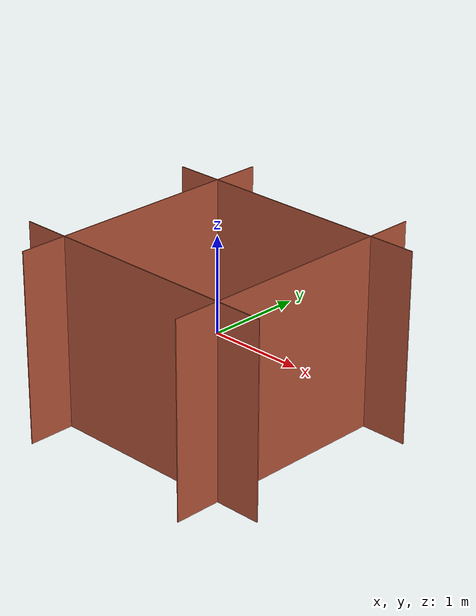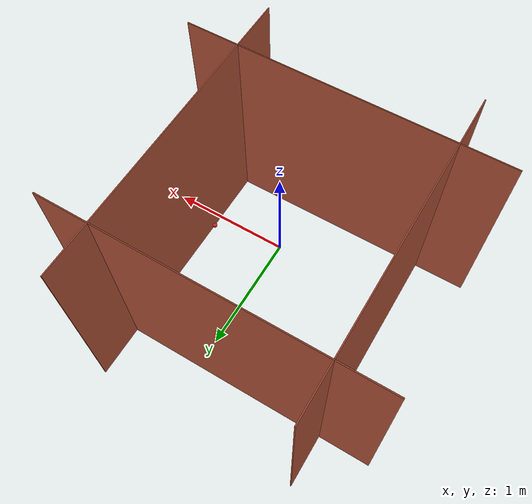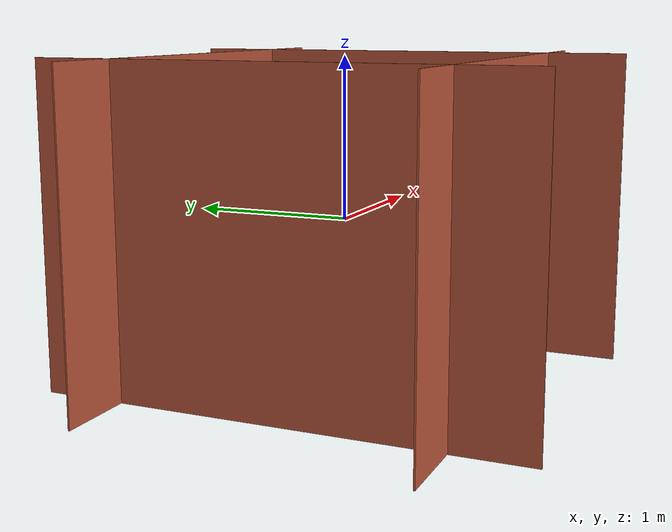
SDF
<sdf version='1.5'>
    <!-- Draw Circle -->
    <model name='ros_symbol'>
      <static>1</static>
      <link name='symbol'>
      	<visual name='goal_1'>
          <pose>0.6 0.1 0 0 0 0</pose>
          <geometry>
            <cylinder>
              <radius>0.02</radius>
              <length>0.01</length>
            </cylinder>
          </geometry>
          <material>
            <script>
              <uri>file://media/materials/scripts/gazebo.material</uri>
              <name>Gazebo/Red</name>
            </script>
          </material>
        </visual>

	<!-- Draw Walls -->
      	<collision name="wall_1">
      	<pose>1 0 0 0 0 0</pose>
        <geometry>
          <box>
            <size>0.01 3.0 2.0</size>
          </box>
        </geometry>
        <max_contacts>10</max_contacts>
          <surface>
            <bounce/>
            <friction>
              <ode/>
            </friction>
            <contact>
              <ode/>
            </contact>
          </surface>
      </collision>

      <visual name="wall_1">
      <pose>1 0 0 0 0 0</pose>
        <geometry>
          <box>
            <size>0.01 3.0 2.0</size>
          </box>
        </geometry>
        <material>
          <script>
            <uri>file://media/materials/scripts/gazebo.material</uri>
            <name>Gazebo/Bricks</name>
          </script>
          <ambient>1 1 1 1</ambient>
          <diffuse>1 1 1 1</diffuse>
          <specular>0.2 0.2 0.2 1</specular>
          <emissive>0 0 0 1</emissive>
        </material>
      </visual>

      <collision name="wall_2">
      	<pose>-1 0 0 0 0 0</pose>
        <geometry>
          <box>
            <size>0.01 3.0 2.0</size>
          </box>
        </geometry>
        <max_contacts>10</max_contacts>
          <surface>
            <bounce/>
            <friction>
              <ode/>
            </friction>
            <contact>
              <ode/>
            </contact>
          </surface>
      </collision>

      <visual name="wall_2">
      	<pose>-1 0 0 0 0 0</pose>
        <geometry>
          <box>
            <size>0.01 3.0 2.0</size>
          </box>
        </geometry>
        <material>
          <script>
            <uri>file://media/materials/scripts/gazebo.material</uri>
            <name>Gazebo/Bricks</name>
          </script>
          <ambient>1 1 1 1</ambient>
          <diffuse>1 1 1 1</diffuse>
          <specular>0.2 0.2 0.2 1</specular>
          <emissive>0 0 0 1</emissive>
        </material>
      </visual>

      <collision name="wall_3">
      	<pose>0 1 0 0 0 0</pose>
        <geometry>
          <box>
            <size>3.0 0.01 2.0</size>
          </box>
        </geometry>
        <max_contacts>10</max_contacts>
          <surface>
            <bounce/>
            <friction>
              <ode/>
            </friction>
            <contact>
              <ode/>
            </contact>
          </surface>
      </collision>

      <visual name="wall_3">
      	<pose>0 1 0 0 0 0</pose>
        <geometry>
          <box>
            <size>3.0 0.01 2.0</size>
          </box>
        </geometry>
        <material>
          <script>
            <uri>file://media/materials/scripts/gazebo.material</uri>
            <name>Gazebo/Bricks</name>
          </script>
          <ambient>1 1 1 1</ambient>
          <diffuse>1 1 1 1</diffuse>
          <specular>0.2 0.2 0.2 1</specular>
          <emissive>0 0 0 1</emissive>
        </material>
      </visual>

      <collision name="wall_4">
      	<pose>0 -1 0 0 0 0</pose>
        <geometry>
          <box>
            <size>3.0 0.01 2.0</size>
          </box>
        </geometry>
        <max_contacts>10</max_contacts>
          <surface>
            <bounce/>
            <friction>
              <ode/>
            </friction>
            <contact>
              <ode/>
            </contact>
          </surface>
      </collision>

      <visual name="wall_4">
      	<pose>0 -1 0 0 0 0</pose>
        <geometry>
          <box>
            <size>3.0 0.01 2.0</size>
          </box>
        </geometry>
        <material>
          <script>
            <uri>file://media/materials/scripts/gazebo.material</uri>
            <name>Gazebo/Bricks</name>
          </script>
          <ambient>1 1 1 1</ambient>
          <diffuse>1 1 1 1</diffuse>
          <specular>0.2 0.2 0.2 1</specular>
          <emissive>0 0 0 1</emissive>
        </material>
      </visual>

    </link>
  </model>
</sdf>
